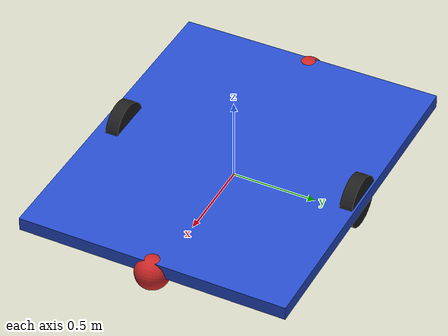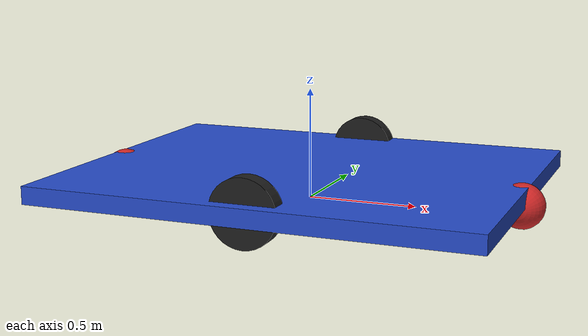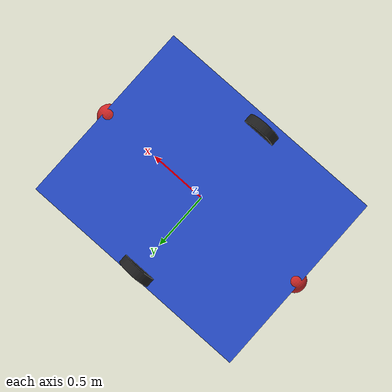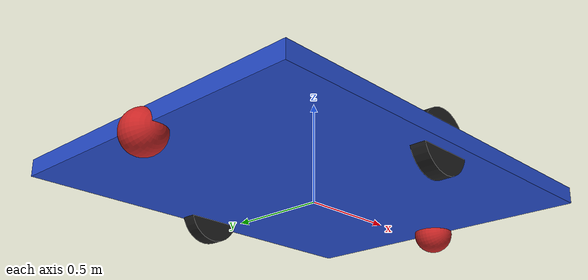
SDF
<?xml version="1.0" ?>
<sdf version="1.6">
  <model name="my_stair_robot">
    <static>false</static>

    <link name="base_link">
      <pose>0 0 0.1 0 0 0</pose> <inertial>
        <mass>5.0</mass>
        <inertia>
          <ixx>0.267</ixx> <ixy>0</ixy> <ixz>0</ixz>
          <iyy>0.417</iyy> <iyz>0</iyz>
          <izz>0.683</izz>
        </inertia>
      </inertial>

      <visual name="visual">
        <geometry>
          <mesh>
            <uri>model://my_stair_robot/meshes/body.stl</uri>
            <scale>1 1 1</scale>
          </mesh>
        </geometry>
        <material>
          <script>
            <name>Gazebo/Blue</name> <uri>file://media/materials/scripts/gazebo.material</uri>
          </script>
        </material>
      </visual>

      <collision name="collision">
        <geometry>
          <box>
            <size>2.0 1.6 0.04</size>
          </box>
        </geometry>
      </collision>
    </link>
    <link name="wheel_right_link">
      <pose>0 -0.7 0.1 -1.5707 0 0</pose>

      <inertial>
        <mass>1.0</mass>
        <inertia>
          <ixx>0.267</ixx> <ixy>0</ixy> <ixz>0</ixz>
          <iyy>0.417</iyy> <iyz>0</iyz>
          <izz>0.683</izz>
        </inertia>
      </inertial>

      <visual name="visual">
        <geometry>
          <mesh>
            <uri>model://my_stair_robot/meshes/wheel.stl</uri>
            <scale>1 1 1</scale>
          </mesh>
        </geometry>
        <material>
          <script>
            <name>Gazebo/Black</name>
            <uri>file://media/materials/scripts/gazebo.material</uri>
          </script>
        </material>
      </visual>

      <collision name="collision">
        <geometry>
          <cylinder>
            <radius>0.15</radius>
            <length>0.038</length>
          </cylinder>
        </geometry>
      </collision>
    </link>

    <joint name="wheel_right_joint" type="revolute">
      <parent>base_link</parent>
      <child>wheel_right_link</child>
      <axis>
        <xyz>0 0 1</xyz> </axis>
    </joint>

    <link name="wheel_left_link">
      <pose>0 0.750 0.1 -1.5707 0 0</pose>

      <inertial>
        <mass>1.0</mass>
        <inertia>
          <ixx>0.267</ixx> <ixy>0</ixy> <ixz>0</ixz>
          <iyy>0.417</iyy> <iyz>0</iyz>
          <izz>0.683</izz>
        </inertia>
      </inertial>

      <visual name="visual">
        <geometry>
          <mesh>
            <uri>model://my_stair_robot/meshes/wheel.stl</uri>
            <scale>1 1 1</scale>
          </mesh>
        </geometry>
        <material>
          <script>
            <name>Gazebo/Black</name>
            <uri>file://media/materials/scripts/gazebo.material</uri>
          </script>
        </material>
      </visual>

      <collision name="collision">
        <geometry>
          <cylinder>
            <radius>0.15</radius>
            <length>0.038</length>
          </cylinder>
        </geometry>
      </collision>
    </link>

    <joint name="wheel_left_joint" type="revolute">
      <parent>base_link</parent>
      <child>wheel_left_link</child>
      <axis>
        <xyz>0 0 1</xyz>
      </axis>
    </joint>

    <link name="wheel_castor_front_link">
      <pose>0.97 0 0.05 -1.5707 0 0</pose> <inertial>
        <mass>0.5</mass>
        <inertia>
          <ixx>0.001</ixx> <ixy>0</ixy> <ixz>0</ixz>
          <iyy>0.001</iyy> <iyz>0</iyz>
          <izz>0.001</izz>
        </inertia>
      </inertial>

      <visual name="visual">
        <geometry>
          <mesh>
            <uri>model://my_stair_robot/meshes/castor_wheel.stl</uri>
            <scale>1 1 1</scale>
          </mesh>
        </geometry>
        <material>
          <script> <name>Gazebo/Red</name> <uri>file://media/materials/scripts/gazebo.material</uri> </script>
        </material>
      </visual>

      <collision name="collision">
        <geometry>
          <sphere> <radius>0.1</radius> </sphere>
        </geometry>
        <surface>
          <friction>
            <ode> <mu>0.0</mu> <mu2>0.0</mu2> </ode>
          </friction>
        </surface>
      </collision>
    </link>

    <joint name="wheel_castor_front_joint" type="fixed">
      <parent>base_link</parent>
      <child>wheel_castor_front_link</child>
    </joint>

<link name="wheel_castor_back_link">
      <pose>-0.97 0 0.05 -1.5707 0 0</pose>
      <inertial>
        <mass>0.5</mass>
        <inertia>
          <ixx>0.001</ixx> <ixy>0</ixy> <ixz>0</ixz>
          <iyy>0.001</iyy> <iyz>0</iyz>
          <izz>0.001</izz>
        </inertia>
      </inertial>

      <visual name="visual">
        <geometry>
          <mesh>
            <uri>model://my_stair_robot/meshes/castor_wheel.stl</uri>
            <scale>1 1 1</scale>
          </mesh>
        </geometry>
        <material>
          <script> <name>Gazebo/Red</name> <uri>file://media/materials/scripts/gazebo.material</uri> </script>
        </material>
      </visual>

      <collision name="collision">
        <geometry>
          <sphere> <radius>0.1</radius> </sphere>
        </geometry>
        <surface>
          <friction>
            <ode> <mu>0.0</mu> <mu2>0.0</mu2> </ode>
          </friction>
        </surface>
      </collision>
    </link>

    <joint name="wheel_castor_back_joint" type="fixed">
      <parent>base_link</parent>
      <child>wheel_castor_back_link</child>
    </joint>

    <plugin name='diff_drive' filename='libgazebo_ros_diff_drive.so'>
          <ros>
            <remapping>cmd_vel:=cmd_vel</remapping>
            <remapping>odom:=odom</remapping>
          </ros>

          <left_joint>wheel_left_joint</left_joint>
          <right_joint>wheel_right_joint</right_joint>

          <wheel_separation>0.94</wheel_separation>
          <wheel_diameter>0.3</wheel_diameter>

          <max_wheel_torque>50</max_wheel_torque>
          <max_wheel_acceleration>2.0</max_wheel_acceleration>

          <publish_odom>true</publish_odom>
          <publish_odom_tf>true</publish_odom_tf>
          <publish_wheel_tf>true</publish_wheel_tf>
          <odometry_frame>odom</odometry_frame>
          <robot_base_frame>base_link</robot_base_frame>
    </plugin>

  </model>
</sdf>
